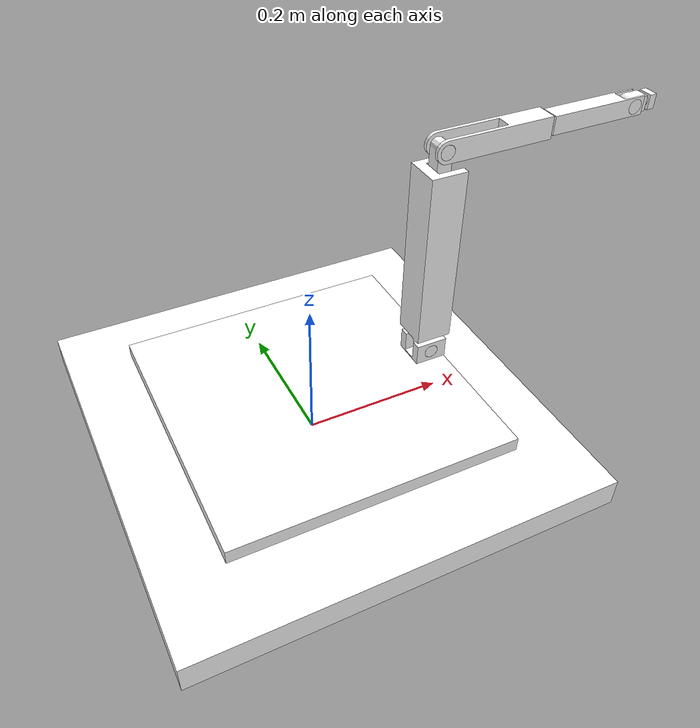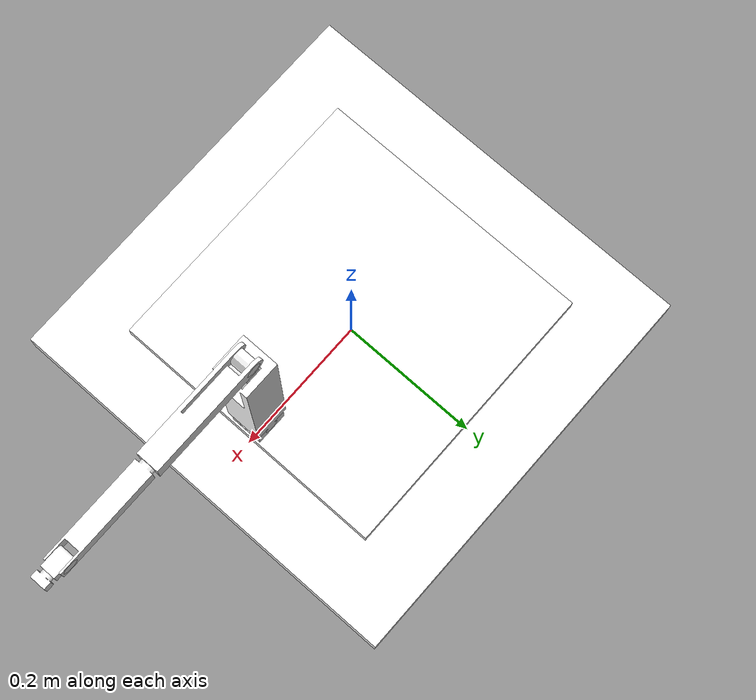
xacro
<?xml version="1.0"?>
<robot xmlns:xacro="http://www.ros.org/wiki/xacro" name="sbarm">
    <xacro:arg name="initial_positions_file" default="initial_positions.yaml" />

    <!-- Import sbarm urdf file -->
    <xacro:include filename="$(find sbarm_description)/urdf/sbarm_description.urdf" />

    <!-- Import control_xacro -->
    <xacro:include filename="sbarm.ros2_control.xacro" />

    <xacro:sbarm_ros2_control name="FakeSystem" initial_positions_file="$(arg initial_positions_file)"/>

</robot>

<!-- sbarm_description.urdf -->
<robot
  name="sbarm">
  <link
    name="base_link">
    <inertial>
      <origin
        xyz="3.22895573206493E-17 1.20744124924668E-17 0.0199816050754555"
        rpy="0 0 0" />
      <mass
        value="13.6628672587713" />
      <inertia
        ixx="0.398885264403897"
        ixy="5.2372920814983E-19"
        ixz="2.08800894925334E-18"
        iyy="0.385539464403898"
        iyz="2.09420681298502E-17"
        izz="0.780781306785087" />
    </inertial>
    <visual>
      <origin
        xyz="0 0 0"
        rpy="0 0 0" />
      <geometry>
        <mesh
          filename="package://sbarm_description/meshes/base_link.STL" />
      </geometry>
      <material
        name="">
        <color
          rgba="1 1 1 1" />
      </material>
    </visual>
    <collision>
      <origin
        xyz="0 0 0"
        rpy="0 0 0" />
      <geometry>
        <mesh
          filename="package://sbarm_description/meshes/base_link.STL" />
      </geometry>
    </collision>
  </link>
  <link
    name="Link1">
    <inertial>
      <origin
        xyz="-0.000340271092844169 0.00970833906327644 2.77387961485344E-17"
        rpy="0 0 0" />
      <mass
        value="3.2314159265359" />
      <inertia
        ixx="0.042802851219708"
        ixy="3.20697949652414E-07"
        ixz="4.4594452943992E-20"
        iyy="0.0851477622987963"
        iyz="1.02247133736398E-20"
        izz="0.0426100545220677" />
    </inertial>
    <visual>
      <origin
        xyz="0 0 0"
        rpy="0 0 0" />
      <geometry>
        <mesh
          filename="package://sbarm_description/meshes/Link1.STL" />
      </geometry>
      <material
        name="">
        <color
          rgba="1 1 1 1" />
      </material>
    </visual>
    <collision>
      <origin
        xyz="0 0 0"
        rpy="0 0 0" />
      <geometry>
        <mesh
          filename="package://sbarm_description/meshes/Link1.STL" />
      </geometry>
    </collision>
  </link>
  <joint
    name="Joint0"
    type="continuous">
    <origin
      xyz="0 0 0.05"
      rpy="1.5708 0 0" />
    <parent
      link="base_link" />
    <child
      link="Link1" />
    <axis
      xyz="0 -1 0" />
  </joint>
  <link
    name="Link2">
    <inertial>
      <origin
        xyz="4.94172086145169E-10 0.0332156260215387 2.77555756156289E-17"
        rpy="0 0 0" />
      <mass
        value="0.03555" />
      <inertia
        ixx="1.33997123018394E-05"
        ixy="4.62022022451317E-16"
        ixz="1.79644795454993E-21"
        iyy="1.34307671297689E-05"
        iyz="-3.59186187689818E-21"
        izz="1.48323544316084E-05" />
    </inertial>
    <visual>
      <origin
        xyz="0 0 0"
        rpy="0 0 0" />
      <geometry>
        <mesh
          filename="package://sbarm_description/meshes/Link2.STL" />
      </geometry>
      <material
        name="">
        <color
          rgba="1 1 1 1" />
      </material>
    </visual>
    <collision>
      <origin
        xyz="0 0 0"
        rpy="0 0 0" />
      <geometry>
        <mesh
          filename="package://sbarm_description/meshes/Link2.STL" />
      </geometry>
    </collision>
  </link>
  <joint
    name="joint1"
    type="continuous">
    <origin
      xyz="0.175 0 0"
      rpy="0 1.5708 0" />
    <parent
      link="Link1" />
    <child
      link="Link2" />
    <axis
      xyz="0 1 0" />
  </joint>
  <link
    name="Link3">
    <inertial>
      <origin
        xyz="0.14092 -3.1717E-16 0.0012243"
        rpy="0 0 0" />
      <mass
        value="0.6015" />
      <inertia
        ixx="0.00024375"
        ixy="6.0163E-18"
        ixz="-6.4307E-05"
        iyy="0.0036817"
        iyz="1.5063E-19"
        izz="0.0036932" />
    </inertial>
    <visual>
      <origin
        xyz="0 0 0"
        rpy="0 0 0" />
      <geometry>
        <mesh
          filename="package://sbarm_description/meshes/Link3.STL" />
      </geometry>
      <material
        name="">
        <color
          rgba="1 1 1 1" />
      </material>
    </visual>
    <collision>
      <origin
        xyz="0 0 0"
        rpy="0 0 0" />
      <geometry>
        <mesh
          filename="package://sbarm_description/meshes/Link3.STL" />
      </geometry>
    </collision>
  </link>
  <joint
    name="Joint2"
    type="revolute">
    <origin
      xyz="0 0.04 0"
      rpy="3.1416 0 1.5708" />
    <parent
      link="Link2" />
    <child
      link="Link3" />
    <axis
      xyz="0 1 0" />
    <limit
      lower="-1.57"
      upper="1.57"
      effort="0"
      velocity="0" />
  </joint>
  <link
    name="Link4">
    <inertial>
      <origin
        xyz="-0.0810873037652259 5.5817069100331E-16 0.00172207650717737"
        rpy="0 0 0" />
      <mass
        value="0.0996862436110493" />
      <inertia
        ixx="1.67014049284908E-05"
        ixy="-6.66301673992002E-20"
        ixz="-5.6686140494268E-06"
        iyy="0.000176995627271821"
        iyz="-6.03509473611794E-22"
        izz="0.000178392866442945" />
    </inertial>
    <visual>
      <origin
        xyz="0 0 0"
        rpy="0 0 0" />
      <geometry>
        <mesh
          filename="package://sbarm_description/meshes/Link4.STL" />
      </geometry>
      <material
        name="">
        <color
          rgba="1 1 1 1" />
      </material>
    </visual>
    <collision>
      <origin
        xyz="0 0 0"
        rpy="0 0 0" />
      <geometry>
        <mesh
          filename="package://sbarm_description/meshes/Link4.STL" />
      </geometry>
    </collision>
  </link>
  <joint
    name="Joint3"
    type="revolute">
    <origin
      xyz="0.3 0 0"
      rpy="0 -1.5708 0" />
    <parent
      link="Link3" />
    <child
      link="Link4" />
    <axis
      xyz="0 -1 0" />
    <limit
      lower="-1.57"
      upper="1.57"
      effort="0"
      velocity="0" />
  </joint>
  <link
    name="Link5">
    <inertial>
      <origin
        xyz="-4.97710877817599E-16 0.0751572598582004 5.55111512312578E-17"
        rpy="0 0 0" />
      <mass
        value="0.0787831853071797" />
      <inertia
        ixx="0.000117962651560774"
        ixy="-5.84753780977857E-20"
        ixz="-3.94384087571583E-22"
        iyy="7.98714047366535E-06"
        iyz="-3.07054641843408E-22"
        izz="0.000118083549435747" />
    </inertial>
    <visual>
      <origin
        xyz="0 0 0"
        rpy="0 0 0" />
      <geometry>
        <mesh
          filename="package://sbarm_description/meshes/Link5.STL" />
      </geometry>
      <material
        name="">
        <color
          rgba="1 1 1 1" />
      </material>
    </visual>
    <collision>
      <origin
        xyz="0 0 0"
        rpy="0 0 0" />
      <geometry>
        <mesh
          filename="package://sbarm_description/meshes/Link5.STL" />
      </geometry>
    </collision>
  </link>
  <joint
    name="joint4"
    type="continuous">
    <origin
      xyz="-0.13 0 0"
      rpy="3.1416 0 -1.5708" />
    <parent
      link="Link4" />
    <child
      link="Link5" />
    <axis
      xyz="0 1 0" />
  </joint>
  <link
    name="Link6">
    <inertial>
      <origin
        xyz="-0.00366912623487137 4.69078198953036E-16 -1.66533453693773E-16"
        rpy="0 0 0" />
      <mass
        value="0.0109452431127404" />
      <inertia
        ixx="9.05783868631967E-07"
        ixy="5.6738921807578E-22"
        ixz="1.04900797162653E-23"
        iyy="9.84418061104334E-07"
        iyz="-2.42004461905348E-23"
        izz="1.17095012491123E-06" />
    </inertial>
    <visual>
      <origin
        xyz="0 0 0"
        rpy="0 0 0" />
      <geometry>
        <mesh
          filename="package://sbarm_description/meshes/Link6.STL" />
      </geometry>
      <material
        name="">
        <color
          rgba="1 1 1 1" />
      </material>
    </visual>
    <collision>
      <origin
        xyz="0 0 0"
        rpy="0 0 0" />
      <geometry>
        <mesh
          filename="package://sbarm_description/meshes/Link6.STL" />
      </geometry>
    </collision>
  </link>
  <joint
    name="Joint5"
    type="revolute">
    <origin
      xyz="0 0.1525 0"
      rpy="3.1416 0 -1.5708" />
    <parent
      link="Link5" />
    <child
      link="Link6" />
    <axis
      xyz="0 1 0" />
    <limit
      lower="-1.57"
      upper="1.57"
      effort="0"
      velocity="0" />
  </joint>
  <link
    name="Link7">
    <inertial>
      <origin
        xyz="-4.80820654765989E-16 0.00501798437019696 -5.55111512312578E-17"
        rpy="0 0 0" />
      <mass
        value="0.0066507188014664" />
      <inertia
        ixx="5.02744158829931E-07"
        ixy="-1.0077740630167E-22"
        ixz="-5.52297948375617E-23"
        iyy="3.4121813295791E-07"
        iyz="4.56641696977034E-23"
        izz="5.02744158829931E-07" />
    </inertial>
    <visual>
      <origin
        xyz="0 0 0"
        rpy="0 0 0" />
      <geometry>
        <mesh
          filename="package://sbarm_description/meshes/Link7.STL" />
      </geometry>
      <material
        name="">
        <color
          rgba="1 1 1 1" />
      </material>
    </visual>
    <collision>
      <origin
        xyz="0 0 0"
        rpy="0 0 0" />
      <geometry>
        <mesh
          filename="package://sbarm_description/meshes/Link7.STL" />
      </geometry>
    </collision>
  </link>
  <joint
    name="Joint6"
    type="continuous">
    <origin
      xyz="-0.02 0 0"
      rpy="3.1416 0 -1.5708" />
    <parent
      link="Link6" />
    <child
      link="Link7" />
    <axis
      xyz="0 1 0" />
  </joint>
</robot>
